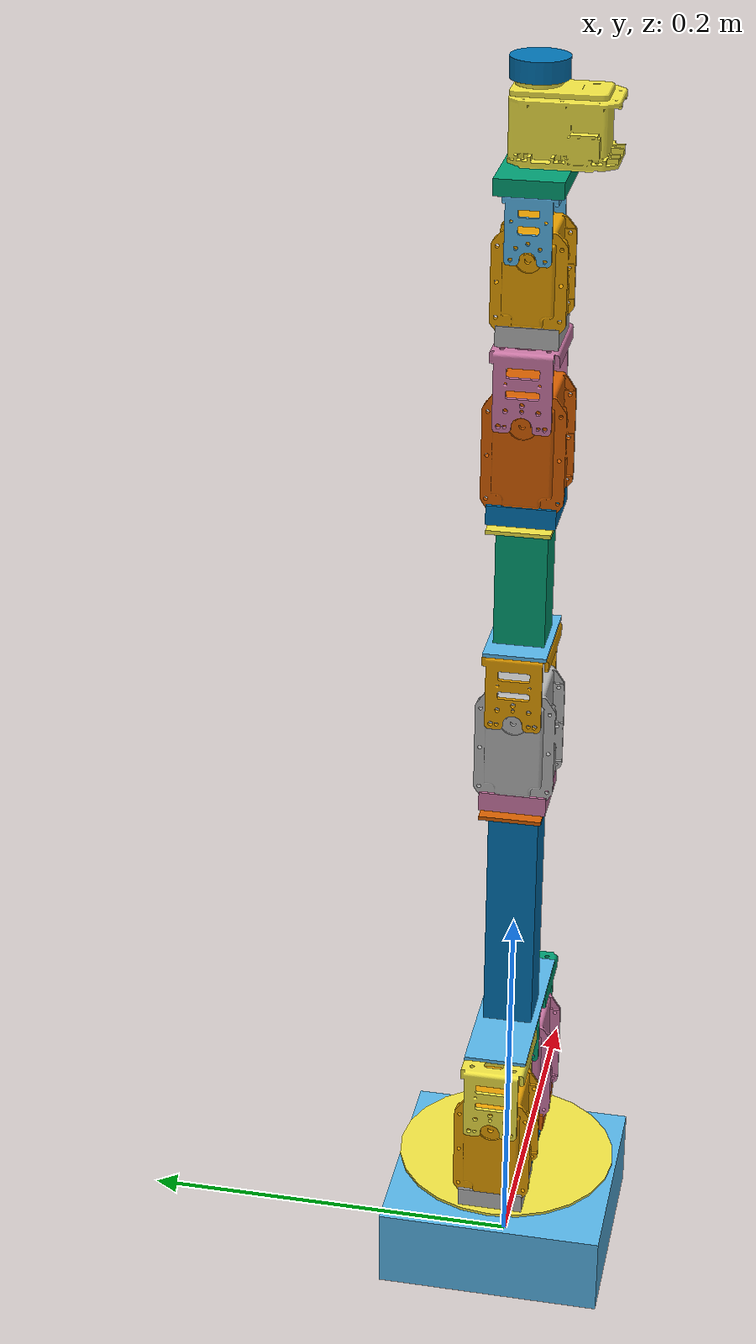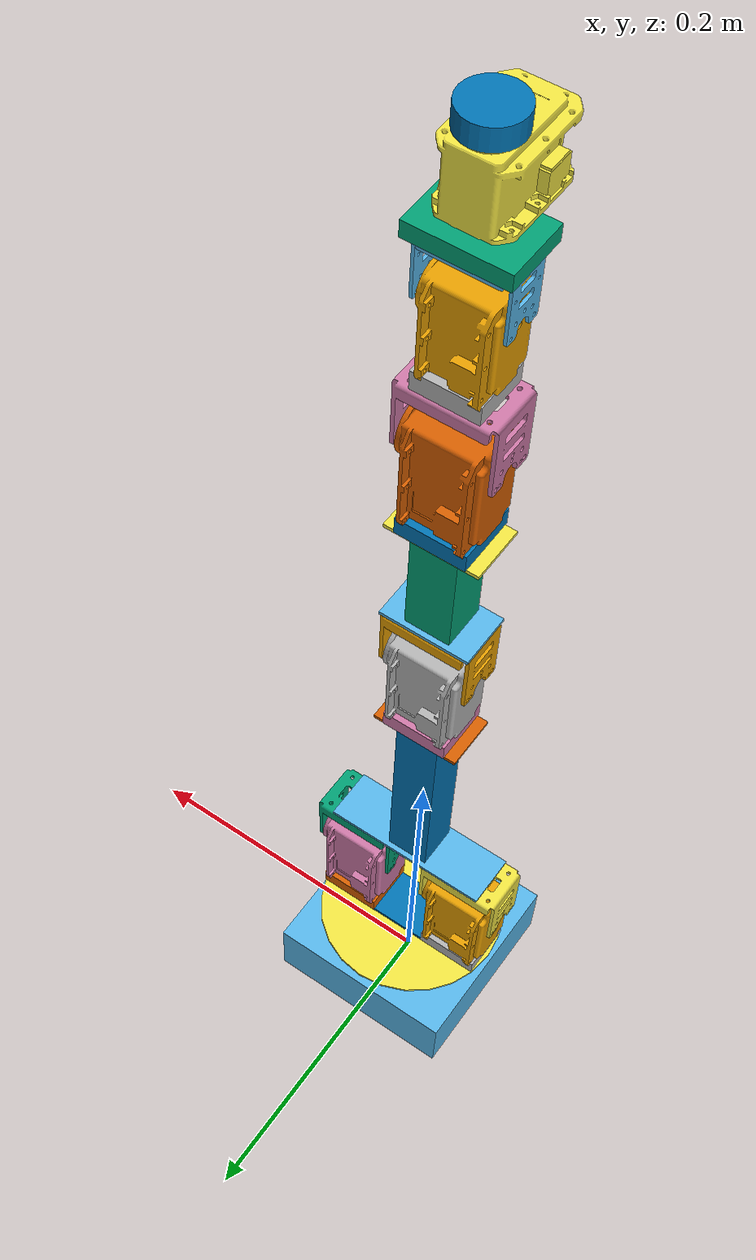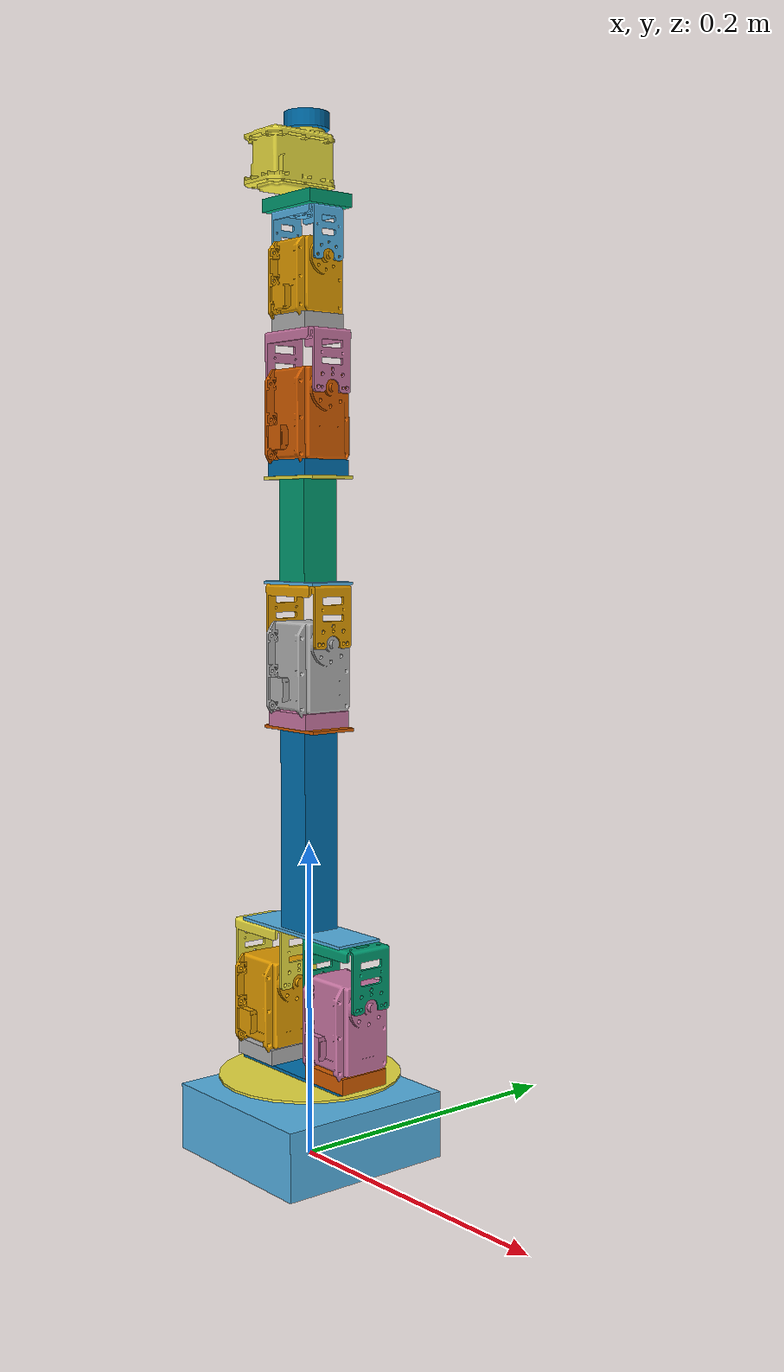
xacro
<?xml version="1.0"?>
<robot name="crustcrawler" xmlns:xacro="http://ros.org/wiki/xacro">
	<!-- Arguments that can be passed to this URDF file: -->
	<xacro:arg name="gripper_enabled" default="false" />
	<xacro:arg name="full_arm" default="true" />
	<xacro:arg name="tek4030" default="false" />
	<!-- Imports of other parts -->
	<xacro:include filename="$(find crustcrawler_description)/urdf/crustcrawler.urdf.xacro" />
	<!-- Build robot from included parts -->
	<xacro:crustcrawler_robot />
</robot>

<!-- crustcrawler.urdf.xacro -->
<robot name="crustcrawler_robot" xmlns:xacro="http://ros.org/wiki/xacro">
	<xacro:include filename="$(find crustcrawler_description)/urdf/brackets.urdf.xacro" />
	<xacro:include filename="$(find crustcrawler_description)/urdf/gripper.urdf.xacro" />
	<xacro:include filename="$(find crustcrawler_description)/urdf/mx28at.urdf.xacro" />
	<xacro:include filename="$(find crustcrawler_description)/urdf/mx64at.urdf.xacro" />
	<xacro:include filename="$(find crustcrawler_description)/urdf/turntable.urdf.xacro" />

	<!-- Helper macros: -->
	<xacro:macro name="dual_axis">
		<xacro:large_bracket name="dual_axis_bottom" />
		<xacro:mx64at_with_bottom name="dual_axis1" />
		<xacro:mx64at_with_bottom name="dual_axis2" />
		<joint name="dual_axis1_fixed" type="fixed">
			<parent link="dual_axis_bottom" />
			<child link="dual_axis1_bottom" />
			<origin xyz="0.037 0 ${large_bracket_height}" />
		</joint>
		<joint name="dual_axis2_fixed" type="fixed">
			<parent link="dual_axis_bottom" />
			<child link="dual_axis2_bottom" />
			<origin xyz="-0.037 0 ${large_bracket_height}" />
		</joint>
		<link name="dual_axis_top">
			<visual>
				<origin xyz="0 0 ${large_bracket_height/2 + 0.036}" />
				<geometry>
					<box size="${large_bracket_width} ${large_bracket_length} ${large_bracket_height}" />
				</geometry>
			</visual>
			<collision>
				<origin xyz="0 0 ${large_bracket_height/2 + 0.036}" />
				<geometry>
					<box size="${large_bracket_width} ${large_bracket_length} ${large_bracket_height}" />
				</geometry>
			</collision>
			<inertial>
				<origin xyz="0 0 ${large_bracket_height/2}" />
				<mass value="${large_bracket_weight}" />
				<inertia
					ixx="${1.0/12.0 * large_bracket_weight *
					(large_bracket_height ** 2 + large_bracket_length ** 2)}" ixy="0" ixz="0"
					iyy="${1.0/12.0 * large_bracket_weight *
					(large_bracket_width ** 2 + large_bracket_length ** 2)}" iyz="0"
					izz="${1.0/12.0 * large_bracket_weight *
					(large_bracket_width ** 2 + large_bracket_height ** 2)}" />
			</inertial>
		</link>
		<joint name="joint_2" type="revolute">
			<parent link="dual_axis_bottom" />
			<child link="dual_axis_top" />
			<origin xyz="0 0 0.0550" />
			<limit
				lower="-1.9" upper="1.9"
				effort="12.0" velocity="6.597" />
			<dynamics friction="0.2" damping="0.0952" />
		</joint>
		<xacro:fr05h101 name="dual_axis1_top" />
		<xacro:fr05h101 name="dual_axis2_top" />
		<joint name="dual_axis1_top_fixed" type="fixed">
			<parent link="dual_axis_top" />
			<child link="dual_axis1_top" />
			<origin xyz="0.037 0 0" />
		</joint>
		<joint name="dual_axis2_top_fixed" type="fixed">
			<parent link="dual_axis_top" />
			<child link="dual_axis2_top" />
			<origin xyz="-0.037 0 0" />
		</joint>
	</xacro:macro>

	<xacro:macro name="wrist_rotate" >
		<link name="wrist_back">
			<visual>
				<origin xyz="0 0 0.00405" />
				<geometry>
					<box size="0.0488 0.03266 0.0081" />
				</geometry>
			</visual>
			<collision>
				<origin xyz="0 0 0.00405" />
				<geometry>
					<box size="0.0488 0.03266 0.0081" />
				</geometry>
			</collision>
			<xacro:box_inertia mass="0.016" width="0.0488" length="0.03266"
				height="0.0081"/>
		</link>
		<link name="wrist_servo">
			<visual>
				<origin rpy="0 0 0"
					xyz="${-mx28at_depth/2} ${-mx28at_width * 0.825} 0" />
				<geometry>
					<mesh filename="package://crustcrawler_description/meshes/MX-28AT_AR.STL"
						scale="0.001 0.001 0.001"/>
				</geometry>
			</visual>
			<collision>
				<origin xyz="0 -0.012 ${mx28at_width/2}" />
				<geometry>
					<box size="${mx28at_depth} ${mx28at_height} ${mx28at_width}" />
				</geometry>
			</collision>
			<xacro:box_inertia mass="0.075" width="${mx28at_width}" length="${mx28at_depth}"
				height="${mx28at_height}" />
		</link>
		<joint name="wrist_rotate_fixed" type="fixed">
			<parent link="wrist_back" />
			<child link="wrist_servo" />
			<origin xyz="0 0 0.0081" />
		</joint>
		<link name="wrist_rotate_spacer">
			<visual>
				<origin xyz="0 0 0.005" />
				<geometry>
					<cylinder length="0.01" radius="0.014"/>
				</geometry>
			</visual>
			<collision>
				<origin xyz="0 0 0.005" />
				<geometry>
					<cylinder length="0.01" radius="0.014"/>
				</geometry>
			</collision>
			<xacro:cylinder_inertia mass="0.013" radius="0.014" height="0.01" />
		</link>
		<joint name="joint_6" type="revolute">
			<parent link="wrist_servo" />
			<child link="wrist_rotate_spacer" />
			<axis xyz="0 0 1" />
			<origin xyz="0 0 ${mx28at_depth + 0.00475}" />
			<limit
				lower="${-pi}" upper="${pi}"
				effort="2.5" velocity="5.76" />
			<dynamics friction="0.1" damping="0.0454" />
		</joint>
	</xacro:macro>

	<!-- Robot arm build starts here: -->
	<xacro:macro name="crustcrawler_robot">
		<!-- Dummy link for KDL -->
		<link name="dummy_root" />
		<!-- Turntable -->
		<xacro:turntable name="turntable" />
		<joint name="turntable_dummy_fixed" type="fixed">
			<parent link="dummy_root" />
			<child link="turntable_base" />
		</joint>
		<!-- Dual axis servos -->
		<xacro:dual_axis />
		<joint name="dual_axis_fixed" type="fixed">
			<parent link="turntable_disk" />
			<child link="dual_axis_bottom" />
			<origin xyz="0 0 ${disk_height}" />
		</joint>
		<!-- Large girder -->
		<xacro:large_girder name="girder1" />
		<joint name="dual_axis_girder_fixed" type="fixed">
			<parent link="dual_axis_top" />
			<child link="girder1" />
			<origin xyz="0 0 ${large_bracket_height + 0.036}" />
		</joint>
		<xacro:small_bracket name="girder1_top" />
		<joint name="girder1_fixed" type="fixed">
			<parent link="girder1" />
			<child link="girder1_top" />
			<origin xyz="0 0 ${large_girder_height}" />
		</joint>
		<!-- Next MX64AT -->
		<xacro:mx64at_fr05h101_bottom name="joint_3" />
		<joint name="joint3_bottom_fixed" type="fixed">
			<parent link="girder1_top" />
			<child link="joint_3_bottom" />
			<origin xyz="0 0 ${small_bracket_height}" />
		</joint>
		<xacro:small_bracket name="joint3_top" />
		<joint name="joint3_top_fixed" type="fixed">
			<parent link="joint_3_bracket" />
			<child link="joint3_top" />
			<origin xyz="0 0 ${fr05h101_height - fr05h101_offset}" />
		</joint>
		<!-- Small girder -->
		<xacro:small_girder name="girder2" />
		<joint name="girder2_bottom_fixed" type="fixed">
			<parent link="joint3_top" />
			<child link="girder2" />
			<origin xyz="0 0 ${small_bracket_height}" />
		</joint>
		<xacro:small_bracket name="girder2_top" />
		<joint name="girder2_top_fixed" type="fixed">
			<parent link="girder2" />
			<child link="girder2_top" />
			<origin xyz="0 0 ${small_girder_height}" />
		</joint>
		<xacro:if value="$(arg full_arm)">
			<xacro:unless value="$(arg tek4030)">
				<!-- Next MX64AT -->
				<xacro:mx64at_fr05h101_bottom name="joint_4" />
				<joint name="joint4_bottom_fixed" type="fixed">
					<parent link="girder2_top" />
					<child link="joint_4_bottom" />
					<origin xyz="0 0 ${small_bracket_height}" />
				</joint>
				<!-- First MX28AT -->
				<xacro:mx28at_fr07h101_bottom name="joint_5" />
				<joint name="joint5_bottom_fixed" type="fixed">
					<parent link="joint_4_bracket" />
					<child link="joint_5_bottom" />
					<origin xyz="0 0 ${fr05h101_height - fr05h101_offset}" />
				</joint>
			</xacro:unless>
			<xacro:if value="$(arg tek4030)">
				<!-- Next MX64AT -->
				<xacro:mx64at_fr05h101_bottom name="joint_4" />
				<joint name="joint4_bottom_fixed" type="fixed">
					<parent link="girder2_top" />
					<child link="joint_4_bottom" />
					<origin rpy="0 0 ${pi/2}" xyz="0 0 ${small_bracket_height}" />
				</joint>
				<!-- Next MX64AT -->
				<xacro:mx64at_fr05h101_bottom name="joint_5" />
				<joint name="joint5_bottom_fixed" type="fixed">
					<parent link="joint_4_bracket" />
					<child link="joint_5_bottom" />
					<origin rpy="0 0 ${-pi/2}" xyz="0 0 ${fr05h101_height - fr05h101_offset}" />
				</joint>
			</xacro:if>
			<!-- Wrist rotate -->
			<xacro:wrist_rotate />
			<joint name="wrist_rotate_back_fixed" type="fixed">
				<parent link="joint_5_bracket" />
				<child link="wrist_back" />
				<origin xyz="0 0 ${fr07h101_height - fr07h101_offset}" />
			</joint>
			<!-- Gripper -->
			<xacro:if value="$(arg gripper_enabled)">
				<xacro:gripper />
				<joint name="gripper_fixed" type="fixed">
					<parent link="wrist_rotate_spacer" />
					<child link="gripper_house" />
					<origin rpy="0 0 ${pi/2}" xyz="0 0 0.01" />
				</joint>
			</xacro:if>
		</xacro:if>

		<!-- Transmissions -->
		<transmission name="tran1">
			<type>transmission_interface/SimpleTransmission</type>
			<joint name="joint_1">
				<hardwareInterface>hardware_interface/EffortJointInterface</hardwareInterface>
			</joint>
			<actuator name="motor1">
				<hardwareInterface>hardware_interface/EffortJointInterface</hardwareInterface>
				<mechanicalReduction>1</mechanicalReduction>
			</actuator>
		</transmission>
		<transmission name="tran2">
			<type>transmission_interface/SimpleTransmission</type>
			<joint name="joint_2">
				<hardwareInterface>hardware_interface/EffortJointInterface</hardwareInterface>
			</joint>
			<actuator name="motor2">
				<hardwareInterface>hardware_interface/EffortJointInterface</hardwareInterface>
				<mechanicalReduction>1</mechanicalReduction>
			</actuator>
		</transmission>
		<transmission name="tran3">
			<type>transmission_interface/SimpleTransmission</type>
			<joint name="joint_3">
				<hardwareInterface>hardware_interface/EffortJointInterface</hardwareInterface>
			</joint>
			<actuator name="motor3">
				<hardwareInterface>hardware_interface/EffortJointInterface</hardwareInterface>
				<mechanicalReduction>1</mechanicalReduction>
			</actuator>
		</transmission>
		<xacro:if value="$(arg full_arm)">
			<transmission name="tran4">
				<type>transmission_interface/SimpleTransmission</type>
				<joint name="joint_4">
					<hardwareInterface>hardware_interface/EffortJointInterface</hardwareInterface>
				</joint>
				<actuator name="motor4">
					<hardwareInterface>hardware_interface/EffortJointInterface</hardwareInterface>
					<mechanicalReduction>1</mechanicalReduction>
				</actuator>
			</transmission>
			<transmission name="tran5">
				<type>transmission_interface/SimpleTransmission</type>
				<joint name="joint_5">
					<hardwareInterface>hardware_interface/EffortJointInterface</hardwareInterface>
				</joint>
				<actuator name="motor5">
					<hardwareInterface>hardware_interface/EffortJointInterface</hardwareInterface>
					<mechanicalReduction>1</mechanicalReduction>
				</actuator>
			</transmission>
			<transmission name="tran6">
				<type>transmission_interface/SimpleTransmission</type>
				<joint name="joint_6">
					<hardwareInterface>hardware_interface/EffortJointInterface</hardwareInterface>
				</joint>
				<actuator name="motor6">
					<hardwareInterface>hardware_interface/EffortJointInterface</hardwareInterface>
					<mechanicalReduction>1</mechanicalReduction>
				</actuator>
			</transmission>
			<xacro:if value="$(arg gripper_enabled)">
				<transmission name="tran7">
					<type>transmission_interface/SimpleTransmission</type>
					<joint name="gripper_left_joint">
						<hardwareInterface>hardware_interface/EffortJointInterface</hardwareInterface>
					</joint>
					<actuator name="motor7">
						<hardwareInterface>hardware_interface/EffortJointInterface</hardwareInterface>
						<mechanicalReduction>1</mechanicalReduction>
					</actuator>
				</transmission>
				<transmission name="tran8">
					<type>transmission_interface/SimpleTransmission</type>
					<joint name="gripper_right_joint">
						<hardwareInterface>hardware_interface/EffortJointInterface</hardwareInterface>
					</joint>
					<actuator name="motor8">
						<hardwareInterface>hardware_interface/EffortJointInterface</hardwareInterface>
						<mechanicalReduction>1</mechanicalReduction>
					</actuator>
				</transmission>
			</xacro:if>
		</xacro:if>
	</xacro:macro>
</robot>

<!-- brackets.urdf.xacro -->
<robot xmlns:xacro="http://ros.org/wiki/xacro">
	<xacro:include filename="$(find crustcrawler_description)/urdf/inertias.urdf.xacro" />

	<xacro:property name="large_bracket_width" value="0.102" />
	<xacro:property name="large_bracket_length" value="0.032" />
	<xacro:property name="large_bracket_height" value="0.002" />
	<xacro:property name="large_bracket_weight" value="0.0152" />

	<xacro:property name="small_bracket_width" value="0.051" />
	<xacro:property name="small_bracket_length" value="0.0315" />
	<xacro:property name="small_bracket_height" value="0.002" />
	<!-- TODO: Check weight properly -->
	<xacro:property name="small_bracket_weight" value="0.0080" />

	<xacro:property name="large_girder_width" value="0.0255" />
	<xacro:property name="large_girder_length" value="0.0255" />
	<xacro:property name="large_girder_height" value="0.127" />
	<xacro:property name="large_girder_weight" value="0.039" />

	<xacro:property name="small_girder_width" value="0.0255" />
	<xacro:property name="small_girder_length" value="0.0255" />
	<xacro:property name="small_girder_height" value="0.0635" />
	<xacro:property name="small_girder_weight" value="0.024" />

	<xacro:macro name="large_bracket" params="name">
		<link name="${name}">
			<visual>
				<origin xyz="0 0 ${large_bracket_height/2}" />
				<geometry>
					<box size="${large_bracket_width} ${large_bracket_length} ${large_bracket_height}" />
				</geometry>
			</visual>

			<collision>
				<origin xyz="0 0 ${large_bracket_height/2}" />
				<geometry>
					<box size="${large_bracket_width} ${large_bracket_length} ${large_bracket_height}" />
				</geometry>
			</collision>
			<xacro:box_inertia mass="${large_bracket_weight}" width="${large_bracket_width}"
				length="${large_bracket_length}" height="${large_bracket_height}" />
		</link>
	</xacro:macro>

	<xacro:macro name="small_bracket" params="name">
		<link name="${name}">
			<visual>
				<origin xyz="0 0 ${small_bracket_height/2}" />
				<geometry>
					<box size="${small_bracket_width} ${small_bracket_length} ${small_bracket_height}" />
				</geometry>
			</visual>

			<collision>
				<origin xyz="0 0 ${small_bracket_height/2}" />
				<geometry>
					<box size="${small_bracket_width} ${small_bracket_length} ${small_bracket_height}" />
				</geometry>
			</collision>
			<xacro:box_inertia mass="${small_bracket_weight}" width="${small_bracket_width}"
				length="${small_bracket_length}" height="${small_bracket_height}" />
		</link>
	</xacro:macro>

	<xacro:macro name="large_girder" params="name">
		<link name="${name}">
			<visual>
				<origin xyz="0 0 ${large_girder_height/2}" />
				<geometry>
					<box size="${large_girder_width} ${large_girder_length} ${large_girder_height}" />
				</geometry>
			</visual>

			<collision>
				<origin xyz="0 0 ${large_girder_height/2}" />
				<geometry>
					<box size="${large_girder_width} ${large_girder_length} ${large_girder_height}" />
				</geometry>
			</collision>
			<xacro:box_inertia mass="${large_girder_weight}" width="${large_girder_width}"
				length="${large_girder_length}" height="${large_girder_height}" />
		</link>
	</xacro:macro>

	<xacro:macro name="small_girder" params="name">
		<link name="${name}">
			<visual>
				<origin xyz="0 0 ${small_girder_height/2}" />
				<geometry>
					<box size="${small_girder_width} ${small_girder_length} ${small_girder_height}" />
				</geometry>
			</visual>

			<collision>
				<origin xyz="0 0 ${small_girder_height/2}" />
				<geometry>
					<box size="${small_girder_width} ${small_girder_length} ${small_girder_height}" />
				</geometry>
			</collision>
			<xacro:box_inertia mass="${small_girder_weight}" width="${small_girder_width}"
				length="${small_girder_length}" height="${small_girder_height}" />
		</link>
	</xacro:macro>

</robot>

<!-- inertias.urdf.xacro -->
<!-- This file contains handy macros for calculating inertias of different
		 objects. Taken from: https://en.wikipedia.org/wiki/List_of_moments_of_inertia -->
<robot xmlns:xacro="http://ros.org/wiki/xacro">
	<xacro:macro name="box_inertia" params="mass width length height">
		<inertial>
			<origin xyz="0 0 ${height/2}" />
			<mass value="${mass}" />
			<inertia
				ixx="${1.0/12.0 * mass * (height ** 2 + length ** 2)}" ixy="0" ixz="0"
				iyy="${1.0/12.0 * mass * (width ** 2 + length ** 2)}" iyz="0"
				izz="${1.0/12.0 * mass * (width ** 2 + height ** 2)}" />
		</inertial>
	</xacro:macro>
	<xacro:macro name="cylinder_inertia" params="mass radius height">
		<inertial>
			<origin xyz="0 0 ${height/2}" />
			<mass value="${mass}" />
			<inertia
				ixx="${1.0/12.0 * mass * (3.0 * radius ** 2 + height ** 2)}" ixy="0" ixz="0"
				iyy="${1.0/12.0 * mass * (3.0 * radius ** 2 + height ** 2)}" iyz="0"
				izz="${1.0/2.0 * mass * (radius ** 2)}" />
		</inertial>
	</xacro:macro>
</robot>

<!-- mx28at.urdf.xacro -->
<robot xmlns:xacro="http://ros.org/wiki/xacro">
	<xacro:include filename="$(find crustcrawler_description)/urdf/inertias.urdf.xacro" />

	<xacro:property name="mx28at_width" value="0.0465" />
	<xacro:property name="mx28at_depth" value="0.0356" />
	<xacro:property name="mx28at_height" value="0.0506" />

	<xacro:property name="fr07h101_width" value="0.044" />
	<xacro:property name="fr07h101_depth" value="0.026" />
	<xacro:property name="fr07h101_height" value="0.0325" />
	<xacro:property name="fr07h101_offset" value="0.0024" />

	<xacro:macro name="mx28at" params="name r:=0 p:=0 y:=0">
		<link name="${name}">
			<visual>
				<origin rpy="${pi/2 + r} ${p} ${pi/2 + y}"
					xyz="${-mx28at_width/2} ${-mx28at_depth/2} 0" />
				<geometry>
					<mesh filename="package://crustcrawler_description/meshes/MX-28AT_AR.STL"
						scale="0.001 0.001 0.001"/>
				</geometry>
			</visual>

			<collision>
				<origin rpy="${r} ${p} ${y}" xyz="0 0 ${mx28at_height/2}" />
				<geometry>
					<box size="${mx28at_width} ${mx28at_depth} ${mx28at_height}" />
				</geometry>
			</collision>
			<xacro:box_inertia mass="0.075" width="${mx28at_width}" length="${mx28at_depth}"
				height="${mx28at_height}" />
		</link>
	</xacro:macro>

	<xacro:macro name="fr07h101" params="name">
		<link name="${name}">
			<visual>
				<origin rpy="${pi/2} 0 0"
					xyz="${-fr07h101_width/2} ${fr07h101_depth/2} ${-fr07h101_offset}" />
				<geometry>
					<mesh filename="package://crustcrawler_description/meshes/FR07-H101.STL"
						scale="0.001 0.001 0.001"/>
				</geometry>
			</visual>

			<collision>
				<origin xyz="0 0 ${fr07h101_height/2 - fr07h101_offset}" />
				<geometry>
					<box size="${fr07h101_width} ${fr07h101_depth} ${fr07h101_height - fr07h101_offset}" />
				</geometry>
			</collision>

			<xacro:box_inertia mass="0.008" width="${fr07h101_width}"
				length="${fr07h101_depth}" height="${fr07h101_height}"	/>
		</link>
	</xacro:macro>

	<xacro:macro name="mx28at_bottom" params="name">
		<link name="${name}">
			<visual>
				<origin xyz="0 0 0.005" />
				<geometry>
					<box size="0.0342 0.030 0.01" />
				</geometry>
			</visual>
			<collision>
				<origin xyz="0 0 0.005" />
				<geometry>
					<box size="0.0342 0.030 0.01" />
				</geometry>
			</collision>
			<xacro:box_inertia mass="0.007" width="0.0342" length="0.030"
				height="0.01"/>
		</link>
	</xacro:macro>

	<!-- Use the following macros when building models: -->
	<xacro:macro name="mx28at_fr07h101" params="name">
		<xacro:mx28at name="${name}_servo"/>
		<xacro:fr07h101 name="${name}_bracket" />
		<joint name="${name}" type="revolute">
			<parent link="${name}_servo" />
			<child link="${name}_bracket" />
			<origin xyz="-0.0025 0 0.0386" />
			<limit
				lower="-1.9" upper="1.9"
				effort="2.5" velocity="5.76" />
			<dynamics friction="0.1" damping="0.0454" />
		</joint>
	</xacro:macro>

	<xacro:macro name="mx28at_with_bottom" params="name">
		<xacro:mx28at_bottom name="${name}_bottom" />
		<xacro:mx28at name="${name}_servo" />
		<joint name="${name}_fixed_bottom" type="fixed">
			<parent link="${name}_bottom" />
			<child link="${name}_servo" />
			<origin xyz="0.0025 0 0.005" />
		</joint>
	</xacro:macro>

	<xacro:macro name="mx28at_fr07h101_bottom" params="name">
		<xacro:mx28at_bottom name="${name}_bottom" />
		<xacro:mx28at_fr07h101 name="${name}" />
		<joint name="${name}_fixed_joint" type="fixed">
			<parent link="${name}_bottom" />
			<child link="${name}_servo" />
			<origin xyz="0.0025 0 0.005" />
		</joint>
	</xacro:macro>

</robot>

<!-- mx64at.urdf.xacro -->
<robot xmlns:xacro="http://ros.org/wiki/xacro">
	<xacro:include filename="$(find crustcrawler_description)/urdf/inertias.urdf.xacro" />

	<xacro:property name="mx64at_width" value="0.05" />
	<xacro:property name="mx64at_depth" value="0.0402" />
	<xacro:property name="mx64at_height" value="0.0611" />

	<xacro:property name="fr05h101_width" value="0.051" />
	<xacro:property name="fr05h101_depth" value="0.033" />
	<xacro:property name="fr05h101_height" value="0.039" />
	<xacro:property name="fr05h101_offset" value="0.0028" />

	<xacro:macro name="mx64at" params="name rpy">
		<link name="${name}">
			<visual>
				<origin rpy="${pi/2} 0 ${pi/2}"
					xyz="${-mx64at_width/2} ${-mx64at_depth/2} 0" />
				<geometry>
					<mesh filename="package://crustcrawler_description/meshes/MX-64AT_AR.STL"
						scale="0.001 0.001 0.001"/>
				</geometry>
			</visual>

			<collision>
				<origin rpy="${rpy}" xyz="0 0 ${mx64at_height/2}" />
				<geometry>
					<box size="${mx64at_width} ${mx64at_depth} ${mx64at_height}" />
				</geometry>
			</collision>

			<inertial>
				<!-- Based on: references/RX-64_INERTIA.pdf -->
				<mass value="0.1295" />
				<orign xyz="0.00015830659 -0.07024195 0.0016784123" rpy="${rpy}" />
				<inertia
					ixx="0.05645784" ixy="-0.65234321" ixz="0.64699697"
					iyy="0.029325728" iyz="-0.0058929492"
					izz="0.045111809" />
			</inertial>
		</link>
	</xacro:macro>

	<xacro:macro name="fr05h101" params="name">
		<link name="${name}">
			<visual>
				<origin rpy="${pi/2} 0 0"
					xyz="${-fr05h101_width/2} ${fr05h101_depth/2} ${-fr05h101_offset}" />
				<geometry>
					<mesh filename="package://crustcrawler_description/meshes/FR05-H101.STL"
						scale="0.001 0.001 0.001"/>
				</geometry>
			</visual>

			<collision>
				<origin xyz="0 0 ${fr05h101_height/2 - fr05h101_offset}" />
				<geometry>
					<box size="${fr05h101_width} ${fr05h101_depth} ${fr05h101_height - fr05h101_offset}" />
				</geometry>
			</collision>

			<xacro:box_inertia mass="0.016" width="${fr05h101_width}"
				length="${fr05h101_depth}" height="${fr05h101_height}"	/>
		</link>
	</xacro:macro>

	<xacro:macro name="mx64at_bottom" params="name">
		<link name="${name}">
			<visual>
				<origin xyz="0 0 0.005" />
				<geometry>
					<box size="0.038 0.034 0.01" />
				</geometry>
			</visual>
			<collision>
				<origin xyz="0 0 0.005" />
				<geometry>
					<box size="0.038 0.034 0.01" />
				</geometry>
			</collision>
			<xacro:box_inertia mass="0.0085" width="0.038" length="0.034"
				height="0.01"/>
		</link>
	</xacro:macro>

	<!-- Use the following macros when building models: -->
	<xacro:macro name="mx64at_fr05h101" params="name">
		<xacro:mx64at name="${name}_servo" rpy="0 0 0" />
		<xacro:fr05h101 name="${name}_bracket" />
		<joint name="${name}" type="revolute">
			<parent link="${name}_servo" />
			<child link="${name}_bracket" />
			<origin xyz="-0.0025 0 0.0481" />
			<limit
				lower="-1.9" upper="1.9"
				effort="6.0" velocity="6.597" />
			<dynamics friction="0.1" damping="0.0952" />
		</joint>
	</xacro:macro>

	<xacro:macro name="mx64at_with_bottom" params="name">
		<xacro:mx64at_bottom name="${name}_bottom" />
		<xacro:mx64at name="${name}_servo" rpy="0 0 0" />
		<joint name="${name}_joint" type="fixed">
			<parent link="${name}_bottom" />
			<child link="${name}_servo" />
			<origin xyz="0.0025 0 0.005" />
		</joint>
	</xacro:macro>

	<xacro:macro name="mx64at_fr05h101_bottom" params="name">
		<xacro:mx64at_bottom name="${name}_bottom" />
		<xacro:mx64at_fr05h101 name="${name}" />
		<joint name="${name}_fixed_joint" type="fixed">
			<parent link="${name}_bottom" />
			<child link="${name}_servo" />
			<origin xyz="0.0025 0 0.005" />
		</joint>
	</xacro:macro>

</robot>

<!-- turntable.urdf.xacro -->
<robot xmlns:xacro="http://ros.org/wiki/xacro">
	<xacro:include filename="$(find crustcrawler_description)/urdf/inertias.urdf.xacro" />

	<xacro:property name="turntable_width" value="0.118" />
	<xacro:property name="turntable_length" value="${turntable_width}" />
	<xacro:property name="turntable_height" value="0.0425" />
	<xacro:property name="turntable_weight" value="0.435" />

	<xacro:property name="disk_radius" value="0.05825" />
	<xacro:property name="disk_height" value="0.0015" />
	<xacro:property name="disk_weight" value="0.0413" />

	<xacro:property name="turntable_spacer_radius" value="0.0135" />
	<xacro:property name="turntable_spacer_height" value="0.00945" />
	<!-- TODO: find proper weight for spacer: -->
	<xacro:property name="turntable_spacer_weight" value="${disk_weight}" />

	<xacro:macro name="turntable_base" params="name">
		<link name="${name}">
			<visual>
				<origin xyz="0 0 ${turntable_height/2}" />
				<geometry>
					<box size="${turntable_width} ${turntable_length} ${turntable_height}" />
				</geometry>
			</visual>

			<collision>
				<origin xyz="0 0 ${turntable_height/2}" />
				<geometry>
					<box size="${turntable_width} ${turntable_length} ${turntable_height}" />
				</geometry>
			</collision>
			<xacro:box_inertia mass="${turntable_weight}" width="${turntable_width}"
				length="${turntable_length}" height="${turntable_height}" />
		</link>
	</xacro:macro>

	<xacro:macro name="turntable_disk" params="name">
		<link name="${name}">
			<visual>
				<origin xyz="0 0 ${disk_height/2}" />
				<geometry>
					<cylinder length="${disk_height}" radius="${disk_radius}"/>
				</geometry>
			</visual>

			<collision>
				<origin xyz="0 0 ${disk_height/2}" />
				<geometry>
					<cylinder length="${disk_height}" radius="${disk_radius}"/>
				</geometry>
			</collision>
			<xacro:cylinder_inertia mass="${disk_weight}" radius="${disk_radius}"
				height="${disk_height}" />
		</link>
	</xacro:macro>

	<xacro:macro name="turntable_spacer" params="name">
		<link name="${name}">
			<visual>
				<origin xyz="0 0 ${turntable_spacer_height/2}" />
				<geometry>
					<cylinder length="${turntable_spacer_height}" radius="${turntable_spacer_radius}"/>
				</geometry>
			</visual>

			<collision>
				<origin xyz="0 0 ${turntable_spacer_height/2}" />
				<geometry>
					<cylinder length="${turntable_spacer_height}" radius="${turntable_spacer_radius}"/>
				</geometry>
			</collision>

			<xacro:cylinder_inertia mass="${turntable_spacer_weight}"
				radius="${turntable_spacer_radius}"
				height="${turntable_spacer_height}" />
		</link>
	</xacro:macro>

	<!-- Main macro to utilize: -->
	<xacro:macro name="turntable" params="name">
		<xacro:turntable_base name="${name}_base" />
		<xacro:turntable_spacer name="${name}_spacer" />
		<xacro:turntable_disk name="${name}_disk" />
		<joint name="joint_1" type="revolute">
			<parent link="${name}_base" />
			<child link="${name}_spacer" />
			<axis xyz="0 0 1" />
			<origin xyz="0 0 ${turntable_height}" />
			<limit
				lower="-3.1415" upper="3.1415"
				effort="6.0" velocity="6.597" />
			<dynamics friction="0.1" damping="0.0952" />
		</joint>

		<joint name="${name}_fixed_joint" type="fixed">
			<parent link="${name}_spacer" />
			<child link="${name}_disk" />
			<origin xyz="0 0 ${turntable_spacer_height}" />
		</joint>
	</xacro:macro>

</robot>
